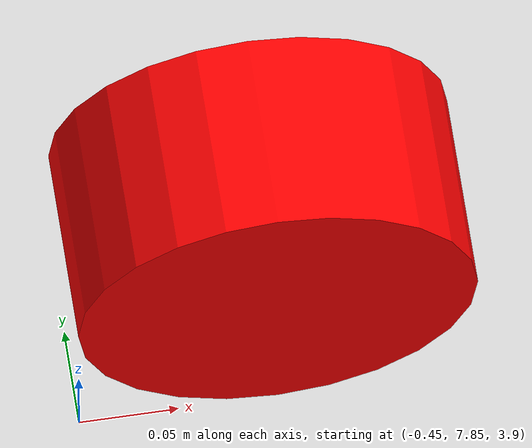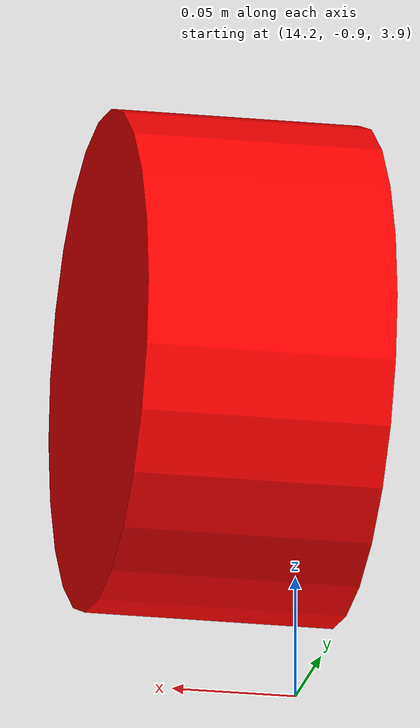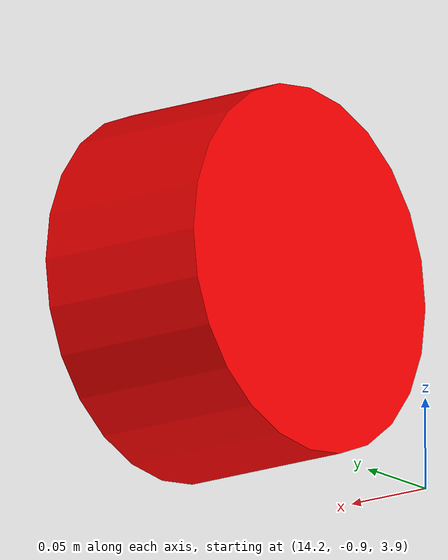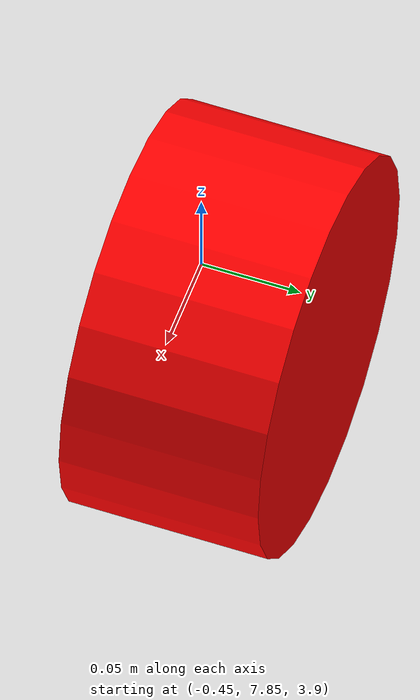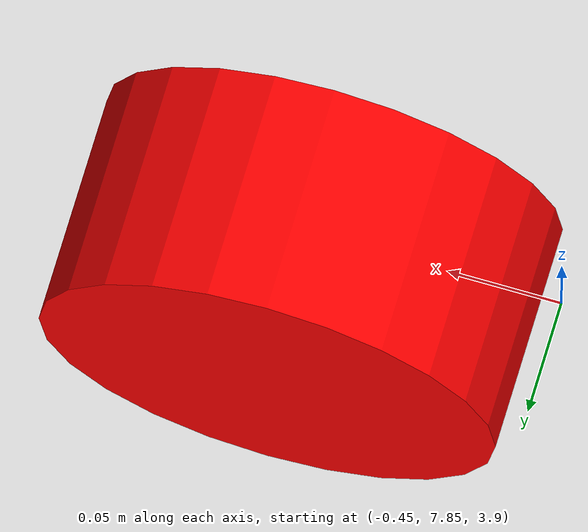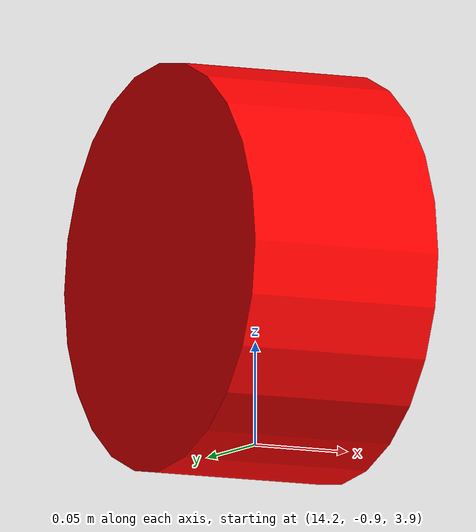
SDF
<?xml version="1.0" ?>
<sdf version="1.5">
  <model name="markers">
    <static>true</static>
    <link name="marker_1">
      <pose>-0.35 7.9 4 0 1.5707 1.5707</pose>
        <collision name="collision">
          <geometry>
            <cylinder>
              <length>0.1</length>
              <radius>0.1</radius>
            </cylinder>
          </geometry>
        </collision>
        <visual name="visual">
          <material>
              <ambient>1 0 0 1</ambient>
              <diffuse>1 0 0 1</diffuse>
              <specular>1 1 1 1</specular>
          </material>
          <geometry>
            <cylinder>
              <length>0.1</length>
              <radius>0.1</radius>
            </cylinder>
          </geometry>
        </visual>
      </link>

      <link name="marker_2">
      <pose>14.25 -0.8 4 0 1.5707 0</pose>
        <collision name="collision">
          <geometry>
            <cylinder>
              <length>0.1</length>
              <radius>0.1</radius>
            </cylinder>
          </geometry>
        </collision>
        <visual name="visual">
          <material>
              <ambient>1 0 0 1</ambient>
              <diffuse>1 0 0 1</diffuse>
              <specular>1 1 1 1</specular>
          </material>
          <geometry>
            <cylinder>
              <length>0.1</length>
              <radius>0.1</radius>
            </cylinder>
          </geometry>
        </visual>
      </link>

      <plugin filename="libLocalPosePublisher.so" name="ignition::gazebo::systems::LocalPosePublisher">
        <set_subscriber_topic_name>/marker_id</set_subscriber_topic_name>
      </plugin>
    </model>
</sdf>
